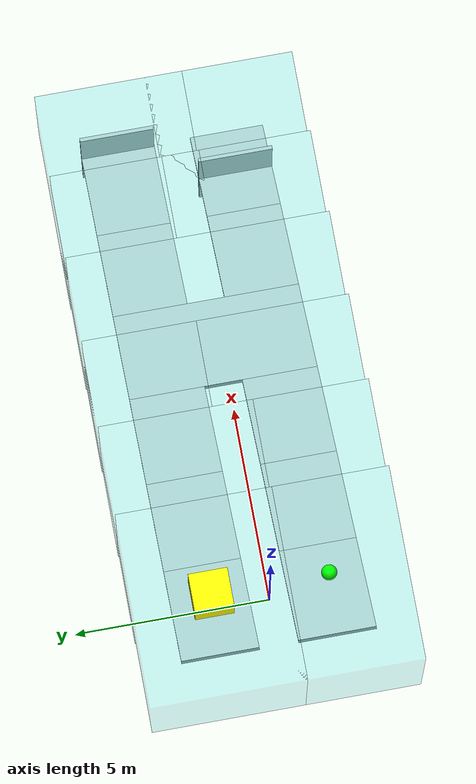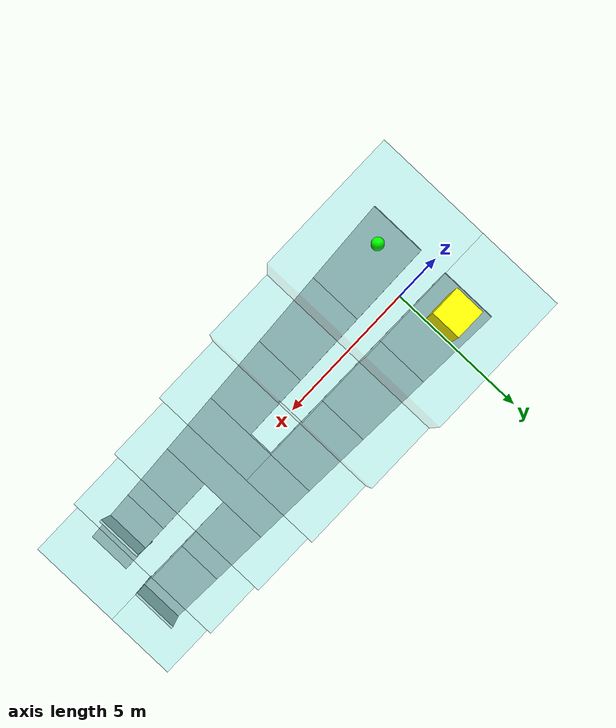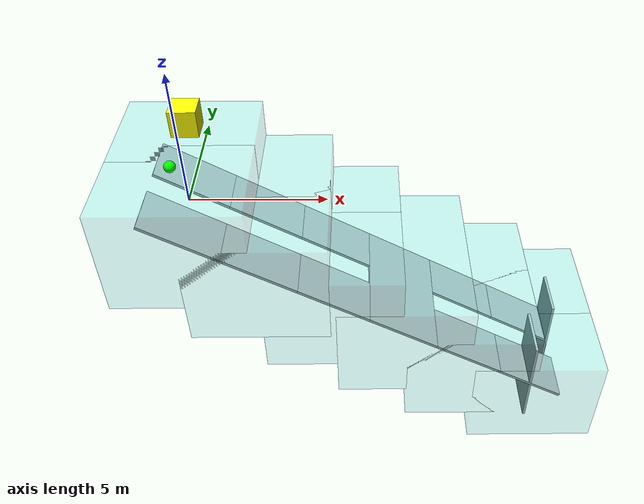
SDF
<?xml version="1.0" ?>

<!--
  Generated from distributed_levels.erb.sdf

  - primary: true
  - secondary: false

-->
<sdf version="1.6">
  <world name="default">

    <plugin
      filename="ignition-gazebo-scene-broadcaster-system"
      name="gz::sim::systems::SceneBroadcaster">
    </plugin>

    <gui fullscreen="0">

      <!-- 3D scene -->
      <plugin filename="GzScene3D" name="3D View">
        <ignition-gui>
          <title>3D View</title>
          <property type="bool" key="showTitleBar">false</property>
          <property type="string" key="state">docked</property>
        </ignition-gui>

        <engine>ogre</engine>
        <scene>scene</scene>
        <ambient_light>0.4 0.4 0.4</ambient_light>
        <background_color>0.8 0.8 0.8</background_color>
        <camera_pose>-6 0 6 0 0.5 0</camera_pose>
      </plugin>

      <!-- World control -->
      <plugin filename="WorldControl" name="World control">
        <ignition-gui>
          <title>World control</title>
          <property type="bool" key="showTitleBar">false</property>
          <property type="bool" key="resizable">false</property>
          <property type="double" key="height">72</property>
          <property type="double" key="width">121</property>
          <property type="double" key="z">1</property>

          <property type="string" key="state">floating</property>
          <anchors target="3D View">
            <line own="left" target="left"/>
            <line own="bottom" target="bottom"/>
          </anchors>
        </ignition-gui>

        <play_pause>true</play_pause>
        <step>true</step>
        <start_paused>true</start_paused>
        <service>/world/default/control</service>
        <stats_topic>/world/default/stats</stats_topic>

      </plugin>

      <!--World statistics -->
      <plugin filename="WorldStats" name="World stats">
        <ignition-gui>
          <title>World stats</title>
          <property type="bool" key="showTitleBar">false</property>
          <property type="bool" key="resizable">false</property>
          <property type="double" key="height">110</property>
          <property type="double" key="width">290</property>
          <property type="double" key="z">1</property>

          <property type="string" key="state">floating</property>
          <anchors target="3D View">
            <line own="right" target="right"/>
            <line own="bottom" target="bottom"/>
          </anchors>
        </ignition-gui>

        <sim_time>true</sim_time>
        <real_time>true</real_time>
        <real_time_factor>true</real_time_factor>
        <iterations>true</iterations>
        <topic>/world/default/stats</topic>

      </plugin>

    </gui>

    <scene>
      <ambient>0.8 0.8 0.8 1.0</ambient>
      <background>0.34 0.39 0.43 1.0</background>
      <grid>false</grid>
      <origin_visual>false</origin_visual>
    </scene>

    <light type="directional" name="sun">
      <cast_shadows>true</cast_shadows>
      <pose>0 0 10 0 0 0</pose>
      <diffuse>0.8 0.8 0.8 1</diffuse>
      <specular>0.2 0.2 0.2 1</specular>
      <attenuation>
        <range>1000</range>
        <constant>0.9</constant>
        <linear>0.01</linear>
        <quadratic>0.001</quadratic>
      </attenuation>
      <direction>-0.5 0.1 -0.9</direction>
    </light>

    <model name="green_sphere">
      <pose>0 -1.5 2.5 0 0 0</pose>
      <link name="shape_link">
        <inertial>
          <inertia>
            <ixx>3</ixx>
            <ixy>0</ixy>
            <ixz>0</ixz>
            <iyy>3</iyy>
            <iyz>0</iyz>
            <izz>3</izz>
          </inertia>
          <mass>3.0</mass>
        </inertial>
        <collision name="shape_collision">
          <geometry>
            <sphere><radius>0.2</radius></sphere>
          </geometry>
        </collision>

        <visual name="shape_visual">
          <geometry>
            <sphere><radius>0.2</radius></sphere>
          </geometry>
          <material>
            <ambient>0 1 0 1</ambient>
            <diffuse>0 1 0 1</diffuse>
            <specular>0 1 0 1</specular>
          </material>
        </visual>
      </link>
    </model>

    <model name="yellow_box">
      <pose>0 1.5 2.5 0 0 0</pose>
      <link name="shape_link">
        <inertial>
          <inertia>
            <ixx>3</ixx>
            <ixy>0</ixy>
            <ixz>0</ixz>
            <iyy>3</iyy>
            <iyz>0</iyz>
            <izz>3</izz>
          </inertia>
          <mass>3.0</mass>
        </inertial>
        <collision name="shape_collision">
          <geometry>
            <box><size>1 1 1</size></box>
          </geometry>
        </collision>

        <visual name="shape_visual">
          <geometry>
            <box><size>1 1 1</size></box>
          </geometry>
          <material>
            <ambient>1 1 0 1</ambient>
            <diffuse>1 1 0 1</diffuse>
            <specular>1 1 0 1</specular>
          </material>
        </visual>
      </link>
    </model>

    <model name="block_0_A">
      <static>true</static>
      <pose>0.0 -1.5 -0.0 0 0.5235987755982988 0</pose>
      <link name="link">
        <collision name="collision">
          <geometry>
            <box>
              <size>3.0 2.0 0.1</size>
            </box>
          </geometry>
        </collision>
        <visual name="visual">
          <geometry>
            <box>
              <size>3.0 2.0 0.1</size>
            </box>
          </geometry>
          <material>
            <ambient>0.8 0.8 0.8 1</ambient>
            <diffuse>0.8 0.8 0.8 1</diffuse>
            <specular>0.8 0.8 0.8 1</specular>
          </material>
        </visual>
      </link>
    </model>

    <model name="level_vis_block_0_A">
      <static>true</static>
      <pose>0.0 -1.5 -0.0 0 0 0</pose>
      <link name="link">
        <visual name="visual_level">
          <geometry>
            <box>
              <size>3.0 2.0 2.0</size>
            </box>
          </geometry>
          <material>
            <ambient>0 0 0.8 0.2</ambient>
            <diffuse>0 0 0.8 0.2</diffuse>
            <specular>0 0 0.8 0.2</specular>
          </material>
        </visual>
        <visual name="visual_buffer">
          <geometry>
            <box>
              <size>
                5.0
                4.0
                4.0
              </size>
            </box>
          </geometry>
          <material>
            <ambient>0 0.8 0.8 0.2</ambient>
            <diffuse>0 0.8 0.8 0.2</diffuse>
            <specular>0 0.8 0.8 0.2</specular>
          </material>
        </visual>
      </link>
    </model>

    <model name="block_0_B">
      <static>true</static>
      <pose>0.0 1.5 -0.0 0 0.5235987755982988 0</pose>
      <link name="link">
        <collision name="collision">
          <geometry>
            <box>
              <size>3.0 2.0 0.1</size>
            </box>
          </geometry>
        </collision>
        <visual name="visual">
          <geometry>
            <box>
              <size>3.0 2.0 0.1</size>
            </box>
          </geometry>
          <material>
            <ambient>0.8 0.8 0.8 1</ambient>
            <diffuse>0.8 0.8 0.8 1</diffuse>
            <specular>0.8 0.8 0.8 1</specular>
          </material>
        </visual>
      </link>
    </model>

    <model name="level_vis_block_0_B">
      <static>true</static>
      <pose>0.0 1.5 -0.0 0 0 0</pose>
      <link name="link">
        <visual name="visual_level">
          <geometry>
            <box>
              <size>3.0 2.0 2.0</size>
            </box>
          </geometry>
          <material>
            <ambient>0 0 0.8 0.2</ambient>
            <diffuse>0 0 0.8 0.2</diffuse>
            <specular>0 0 0.8 0.2</specular>
          </material>
        </visual>
        <visual name="visual_buffer">
          <geometry>
            <box>
              <size>
                5.0
                4.0
                4.0
              </size>
            </box>
          </geometry>
          <material>
            <ambient>0 0.8 0.8 0.2</ambient>
            <diffuse>0 0.8 0.8 0.2</diffuse>
            <specular>0 0.8 0.8 0.2</specular>
          </material>
        </visual>
      </link>
    </model>

    <model name="block_1_A">
      <static>true</static>
      <pose>2.598076211353316 -1.5 -1.4999999999999998 0 0.5235987755982988 0</pose>
      <link name="link">
        <collision name="collision">
          <geometry>
            <box>
              <size>3.0 2.0 0.1</size>
            </box>
          </geometry>
        </collision>
        <visual name="visual">
          <geometry>
            <box>
              <size>3.0 2.0 0.1</size>
            </box>
          </geometry>
          <material>
            <ambient>0.8 0.8 0.8 1</ambient>
            <diffuse>0.8 0.8 0.8 1</diffuse>
            <specular>0.8 0.8 0.8 1</specular>
          </material>
        </visual>
      </link>
    </model>

    <model name="level_vis_block_1_A">
      <static>true</static>
      <pose>2.598076211353316 -1.5 -1.4999999999999998 0 0 0</pose>
      <link name="link">
        <visual name="visual_level">
          <geometry>
            <box>
              <size>3.0 2.0 2.0</size>
            </box>
          </geometry>
          <material>
            <ambient>0 0 0.8 0.2</ambient>
            <diffuse>0 0 0.8 0.2</diffuse>
            <specular>0 0 0.8 0.2</specular>
          </material>
        </visual>
        <visual name="visual_buffer">
          <geometry>
            <box>
              <size>
                5.0
                4.0
                4.0
              </size>
            </box>
          </geometry>
          <material>
            <ambient>0 0.8 0.8 0.2</ambient>
            <diffuse>0 0.8 0.8 0.2</diffuse>
            <specular>0 0.8 0.8 0.2</specular>
          </material>
        </visual>
      </link>
    </model>

    <model name="block_1_B">
      <static>true</static>
      <pose>2.598076211353316 1.5 -1.4999999999999998 0 0.5235987755982988 0</pose>
      <link name="link">
        <collision name="collision">
          <geometry>
            <box>
              <size>3.0 2.0 0.1</size>
            </box>
          </geometry>
        </collision>
        <visual name="visual">
          <geometry>
            <box>
              <size>3.0 2.0 0.1</size>
            </box>
          </geometry>
          <material>
            <ambient>0.8 0.8 0.8 1</ambient>
            <diffuse>0.8 0.8 0.8 1</diffuse>
            <specular>0.8 0.8 0.8 1</specular>
          </material>
        </visual>
      </link>
    </model>

    <model name="level_vis_block_1_B">
      <static>true</static>
      <pose>2.598076211353316 1.5 -1.4999999999999998 0 0 0</pose>
      <link name="link">
        <visual name="visual_level">
          <geometry>
            <box>
              <size>3.0 2.0 2.0</size>
            </box>
          </geometry>
          <material>
            <ambient>0 0 0.8 0.2</ambient>
            <diffuse>0 0 0.8 0.2</diffuse>
            <specular>0 0 0.8 0.2</specular>
          </material>
        </visual>
        <visual name="visual_buffer">
          <geometry>
            <box>
              <size>
                5.0
                4.0
                4.0
              </size>
            </box>
          </geometry>
          <material>
            <ambient>0 0.8 0.8 0.2</ambient>
            <diffuse>0 0.8 0.8 0.2</diffuse>
            <specular>0 0.8 0.8 0.2</specular>
          </material>
        </visual>
      </link>
    </model>

    <model name="block_2_A">
      <static>true</static>
      <pose>5.196152422706632 -1.5 -2.9999999999999996 0 0.5235987755982988 0</pose>
      <link name="link">
        <collision name="collision">
          <geometry>
            <box>
              <size>3.0 2.0 0.1</size>
            </box>
          </geometry>
        </collision>
        <visual name="visual">
          <geometry>
            <box>
              <size>3.0 2.0 0.1</size>
            </box>
          </geometry>
          <material>
            <ambient>0.8 0.8 0.8 1</ambient>
            <diffuse>0.8 0.8 0.8 1</diffuse>
            <specular>0.8 0.8 0.8 1</specular>
          </material>
        </visual>
      </link>
    </model>

    <model name="level_vis_block_2_A">
      <static>true</static>
      <pose>5.196152422706632 -1.5 -2.9999999999999996 0 0 0</pose>
      <link name="link">
        <visual name="visual_level">
          <geometry>
            <box>
              <size>3.0 2.0 2.0</size>
            </box>
          </geometry>
          <material>
            <ambient>0 0 0.8 0.2</ambient>
            <diffuse>0 0 0.8 0.2</diffuse>
            <specular>0 0 0.8 0.2</specular>
          </material>
        </visual>
        <visual name="visual_buffer">
          <geometry>
            <box>
              <size>
                5.0
                4.0
                4.0
              </size>
            </box>
          </geometry>
          <material>
            <ambient>0 0.8 0.8 0.2</ambient>
            <diffuse>0 0.8 0.8 0.2</diffuse>
            <specular>0 0.8 0.8 0.2</specular>
          </material>
        </visual>
      </link>
    </model>

    <model name="block_2_B">
      <static>true</static>
      <pose>5.196152422706632 1.5 -2.9999999999999996 0 0.5235987755982988 0</pose>
      <link name="link">
        <collision name="collision">
          <geometry>
            <box>
              <size>3.0 2.0 0.1</size>
            </box>
          </geometry>
        </collision>
        <visual name="visual">
          <geometry>
            <box>
              <size>3.0 2.0 0.1</size>
            </box>
          </geometry>
          <material>
            <ambient>0.8 0.8 0.8 1</ambient>
            <diffuse>0.8 0.8 0.8 1</diffuse>
            <specular>0.8 0.8 0.8 1</specular>
          </material>
        </visual>
      </link>
    </model>

    <model name="level_vis_block_2_B">
      <static>true</static>
      <pose>5.196152422706632 1.5 -2.9999999999999996 0 0 0</pose>
      <link name="link">
        <visual name="visual_level">
          <geometry>
            <box>
              <size>3.0 2.0 2.0</size>
            </box>
          </geometry>
          <material>
            <ambient>0 0 0.8 0.2</ambient>
            <diffuse>0 0 0.8 0.2</diffuse>
            <specular>0 0 0.8 0.2</specular>
          </material>
        </visual>
        <visual name="visual_buffer">
          <geometry>
            <box>
              <size>
                5.0
                4.0
                4.0
              </size>
            </box>
          </geometry>
          <material>
            <ambient>0 0.8 0.8 0.2</ambient>
            <diffuse>0 0.8 0.8 0.2</diffuse>
            <specular>0 0.8 0.8 0.2</specular>
          </material>
        </visual>
      </link>
    </model>

    <model name="block_3_C">
      <static>true</static>
      <pose>7.794228634059948 0 -4.499999999999999 0 0.5235987755982988 0</pose>
      <link name="link">
        <collision name="collision">
          <geometry>
            <box>
              <size>3.0 5.0 0.1</size>
            </box>
          </geometry>
        </collision>
        <visual name="visual">
          <geometry>
            <box>
              <size>3.0 5.0 0.1</size>
            </box>
          </geometry>
          <material>
            <ambient>0.8 0.8 0.8 1</ambient>
            <diffuse>0.8 0.8 0.8 1</diffuse>
            <specular>0.8 0.8 0.8 1</specular>
          </material>
        </visual>
      </link>
    </model>

    <model name="level_vis_block_3_C">
      <static>true</static>
      <pose>7.794228634059948 0 -4.499999999999999 0 0 0</pose>
      <link name="link">
        <visual name="visual_level">
          <geometry>
            <box>
              <size>3.0 5.0 2.0</size>
            </box>
          </geometry>
          <material>
            <ambient>0 0 0.8 0.2</ambient>
            <diffuse>0 0 0.8 0.2</diffuse>
            <specular>0 0 0.8 0.2</specular>
          </material>
        </visual>
        <visual name="visual_buffer">
          <geometry>
            <box>
              <size>
                5.0
                7.0
                4.0
              </size>
            </box>
          </geometry>
          <material>
            <ambient>0 0.8 0.8 0.2</ambient>
            <diffuse>0 0.8 0.8 0.2</diffuse>
            <specular>0 0.8 0.8 0.2</specular>
          </material>
        </visual>
      </link>
    </model>

    <model name="block_4_A">
      <static>true</static>
      <pose>10.392304845413264 -1.5 -5.999999999999999 0 0.5235987755982988 0</pose>
      <link name="link">
        <collision name="collision">
          <geometry>
            <box>
              <size>3.0 2.0 0.1</size>
            </box>
          </geometry>
        </collision>
        <visual name="visual">
          <geometry>
            <box>
              <size>3.0 2.0 0.1</size>
            </box>
          </geometry>
          <material>
            <ambient>0.8 0.8 0.8 1</ambient>
            <diffuse>0.8 0.8 0.8 1</diffuse>
            <specular>0.8 0.8 0.8 1</specular>
          </material>
        </visual>
      </link>
    </model>

    <model name="level_vis_block_4_A">
      <static>true</static>
      <pose>10.392304845413264 -1.5 -5.999999999999999 0 0 0</pose>
      <link name="link">
        <visual name="visual_level">
          <geometry>
            <box>
              <size>3.0 2.0 2.0</size>
            </box>
          </geometry>
          <material>
            <ambient>0 0 0.8 0.2</ambient>
            <diffuse>0 0 0.8 0.2</diffuse>
            <specular>0 0 0.8 0.2</specular>
          </material>
        </visual>
        <visual name="visual_buffer">
          <geometry>
            <box>
              <size>
                5.0
                4.0
                4.0
              </size>
            </box>
          </geometry>
          <material>
            <ambient>0 0.8 0.8 0.2</ambient>
            <diffuse>0 0.8 0.8 0.2</diffuse>
            <specular>0 0.8 0.8 0.2</specular>
          </material>
        </visual>
      </link>
    </model>

    <model name="block_4_B">
      <static>true</static>
      <pose>10.392304845413264 1.5 -5.999999999999999 0 0.5235987755982988 0</pose>
      <link name="link">
        <collision name="collision">
          <geometry>
            <box>
              <size>3.0 2.0 0.1</size>
            </box>
          </geometry>
        </collision>
        <visual name="visual">
          <geometry>
            <box>
              <size>3.0 2.0 0.1</size>
            </box>
          </geometry>
          <material>
            <ambient>0.8 0.8 0.8 1</ambient>
            <diffuse>0.8 0.8 0.8 1</diffuse>
            <specular>0.8 0.8 0.8 1</specular>
          </material>
        </visual>
      </link>
    </model>

    <model name="level_vis_block_4_B">
      <static>true</static>
      <pose>10.392304845413264 1.5 -5.999999999999999 0 0 0</pose>
      <link name="link">
        <visual name="visual_level">
          <geometry>
            <box>
              <size>3.0 2.0 2.0</size>
            </box>
          </geometry>
          <material>
            <ambient>0 0 0.8 0.2</ambient>
            <diffuse>0 0 0.8 0.2</diffuse>
            <specular>0 0 0.8 0.2</specular>
          </material>
        </visual>
        <visual name="visual_buffer">
          <geometry>
            <box>
              <size>
                5.0
                4.0
                4.0
              </size>
            </box>
          </geometry>
          <material>
            <ambient>0 0.8 0.8 0.2</ambient>
            <diffuse>0 0.8 0.8 0.2</diffuse>
            <specular>0 0.8 0.8 0.2</specular>
          </material>
        </visual>
      </link>
    </model>

    <model name="block_5_A">
      <static>true</static>
      <pose>12.99038105676658 -1.5 -7.499999999999999 0 0.5235987755982988 0</pose>
      <link name="link">
        <collision name="collision">
          <geometry>
            <box>
              <size>3.0 2.0 0.1</size>
            </box>
          </geometry>
        </collision>
        <visual name="visual">
          <geometry>
            <box>
              <size>3.0 2.0 0.1</size>
            </box>
          </geometry>
          <material>
            <ambient>0.8 0.8 0.8 1</ambient>
            <diffuse>0.8 0.8 0.8 1</diffuse>
            <specular>0.8 0.8 0.8 1</specular>
          </material>
        </visual>
      </link>
    </model>

    <model name="level_vis_block_5_A">
      <static>true</static>
      <pose>12.99038105676658 -1.5 -7.499999999999999 0 0 0</pose>
      <link name="link">
        <visual name="visual_level">
          <geometry>
            <box>
              <size>3.0 2.0 2.0</size>
            </box>
          </geometry>
          <material>
            <ambient>0 0 0.8 0.2</ambient>
            <diffuse>0 0 0.8 0.2</diffuse>
            <specular>0 0 0.8 0.2</specular>
          </material>
        </visual>
        <visual name="visual_buffer">
          <geometry>
            <box>
              <size>
                5.0
                4.0
                4.0
              </size>
            </box>
          </geometry>
          <material>
            <ambient>0 0.8 0.8 0.2</ambient>
            <diffuse>0 0.8 0.8 0.2</diffuse>
            <specular>0 0.8 0.8 0.2</specular>
          </material>
        </visual>
      </link>
    </model>

    <model name="block_5_B">
      <static>true</static>
      <pose>12.99038105676658 1.5 -7.499999999999999 0 0.5235987755982988 0</pose>
      <link name="link">
        <collision name="collision">
          <geometry>
            <box>
              <size>3.0 2.0 0.1</size>
            </box>
          </geometry>
        </collision>
        <visual name="visual">
          <geometry>
            <box>
              <size>3.0 2.0 0.1</size>
            </box>
          </geometry>
          <material>
            <ambient>0.8 0.8 0.8 1</ambient>
            <diffuse>0.8 0.8 0.8 1</diffuse>
            <specular>0.8 0.8 0.8 1</specular>
          </material>
        </visual>
      </link>
    </model>

    <model name="level_vis_block_5_B">
      <static>true</static>
      <pose>12.99038105676658 1.5 -7.499999999999999 0 0 0</pose>
      <link name="link">
        <visual name="visual_level">
          <geometry>
            <box>
              <size>3.0 2.0 2.0</size>
            </box>
          </geometry>
          <material>
            <ambient>0 0 0.8 0.2</ambient>
            <diffuse>0 0 0.8 0.2</diffuse>
            <specular>0 0 0.8 0.2</specular>
          </material>
        </visual>
        <visual name="visual_buffer">
          <geometry>
            <box>
              <size>
                5.0
                4.0
                4.0
              </size>
            </box>
          </geometry>
          <material>
            <ambient>0 0.8 0.8 0.2</ambient>
            <diffuse>0 0.8 0.8 0.2</diffuse>
            <specular>0 0.8 0.8 0.2</specular>
          </material>
        </visual>
      </link>
    </model>

    <model name="end_block_A">
      <static>true</static>
      <pose>
        12.99038105676658
        -1.5
        -7.499999999999999
        0
        0
        0
      </pose>
      <link name="link">
        <collision name="collision">
          <geometry>
            <box>
              <size>0.1 5.0 4.0</size>
            </box>
          </geometry>
        </collision>
        <visual name="visual">
          <geometry>
            <box>
              <size>0.1 2.0 4.0</size>
            </box>
          </geometry>
          <material>
            <ambient>0.8 0.8 0.8 1</ambient>
            <diffuse>0.8 0.8 0.8 1</diffuse>
            <specular>0.8 0.8 0.8 1</specular>
          </material>
        </visual>
      </link>
    </model>

    <model name="end_block_B">
      <static>true</static>
      <pose>
        14.289419162443238
        1.5
        -8.249999999999998
        0
        0
        0
      </pose>
      <link name="link">
        <collision name="collision">
          <geometry>
            <box>
              <size>0.1 5.0 4.0</size>
            </box>
          </geometry>
        </collision>
        <visual name="visual">
          <geometry>
            <box>
              <size>0.1 2.0 4.0</size>
            </box>
          </geometry>
          <material>
            <ambient>0.8 0.8 0.8 1</ambient>
            <diffuse>0.8 0.8 0.8 1</diffuse>
            <specular>0.8 0.8 0.8 1</specular>
          </material>
        </visual>
      </link>
    </model>

    <plugin name="gz::sim" filename="dummy">

      <performer name="perf_green_sphere">
        <ref>green_sphere</ref>
        <geometry>
          <box>
            <size>1 1 1</size>
          </box>
        </geometry>
      </performer>

      <performer name="perf_yellow_box">
        <ref>yellow_box</ref>
        <geometry>
          <box>
            <size>1 1 1</size>
          </box>
        </geometry>
      </performer>

    <level name="level_block_0_A">
      <pose>0.0 -1.5 -0.0 0 0 0</pose>
      <geometry>
        <box>
          <size>3.0 2.0 2.0</size>
        </box>
      </geometry>
      <buffer>1.0</buffer>
      <ref>block_0_A</ref>
    </level>

    <level name="level_block_0_B">
      <pose>0.0 1.5 -0.0 0 0 0</pose>
      <geometry>
        <box>
          <size>3.0 2.0 2.0</size>
        </box>
      </geometry>
      <buffer>1.0</buffer>
      <ref>block_0_B</ref>
    </level>

    <level name="level_block_1_A">
      <pose>2.598076211353316 -1.5 -1.4999999999999998 0 0 0</pose>
      <geometry>
        <box>
          <size>3.0 2.0 2.0</size>
        </box>
      </geometry>
      <buffer>1.0</buffer>
      <ref>block_1_A</ref>
    </level>

    <level name="level_block_1_B">
      <pose>2.598076211353316 1.5 -1.4999999999999998 0 0 0</pose>
      <geometry>
        <box>
          <size>3.0 2.0 2.0</size>
        </box>
      </geometry>
      <buffer>1.0</buffer>
      <ref>block_1_B</ref>
    </level>

    <level name="level_block_2_A">
      <pose>5.196152422706632 -1.5 -2.9999999999999996 0 0 0</pose>
      <geometry>
        <box>
          <size>3.0 2.0 2.0</size>
        </box>
      </geometry>
      <buffer>1.0</buffer>
      <ref>block_2_A</ref>
    </level>

    <level name="level_block_2_B">
      <pose>5.196152422706632 1.5 -2.9999999999999996 0 0 0</pose>
      <geometry>
        <box>
          <size>3.0 2.0 2.0</size>
        </box>
      </geometry>
      <buffer>1.0</buffer>
      <ref>block_2_B</ref>
    </level>

    <level name="level_block_3_C">
      <pose>7.794228634059948 0 -4.499999999999999 0 0 0</pose>
      <geometry>
        <box>
          <size>3.0 5.0 2.0</size>
        </box>
      </geometry>
      <buffer>1.0</buffer>
      <ref>block_3_C</ref>
    </level>

    <level name="level_block_4_A">
      <pose>10.392304845413264 -1.5 -5.999999999999999 0 0 0</pose>
      <geometry>
        <box>
          <size>3.0 2.0 2.0</size>
        </box>
      </geometry>
      <buffer>1.0</buffer>
      <ref>block_4_A</ref>
    </level>

    <level name="level_block_4_B">
      <pose>10.392304845413264 1.5 -5.999999999999999 0 0 0</pose>
      <geometry>
        <box>
          <size>3.0 2.0 2.0</size>
        </box>
      </geometry>
      <buffer>1.0</buffer>
      <ref>block_4_B</ref>
    </level>

    <level name="level_block_5_A">
      <pose>12.99038105676658 -1.5 -7.499999999999999 0 0 0</pose>
      <geometry>
        <box>
          <size>3.0 2.0 2.0</size>
        </box>
      </geometry>
      <buffer>1.0</buffer>
      <ref>block_5_A</ref>
    </level>

    <level name="level_block_5_B">
      <pose>12.99038105676658 1.5 -7.499999999999999 0 0 0</pose>
      <geometry>
        <box>
          <size>3.0 2.0 2.0</size>
        </box>
      </geometry>
      <buffer>1.0</buffer>
      <ref>block_5_B</ref>
    </level>

    </plugin>

  </world>
</sdf>
